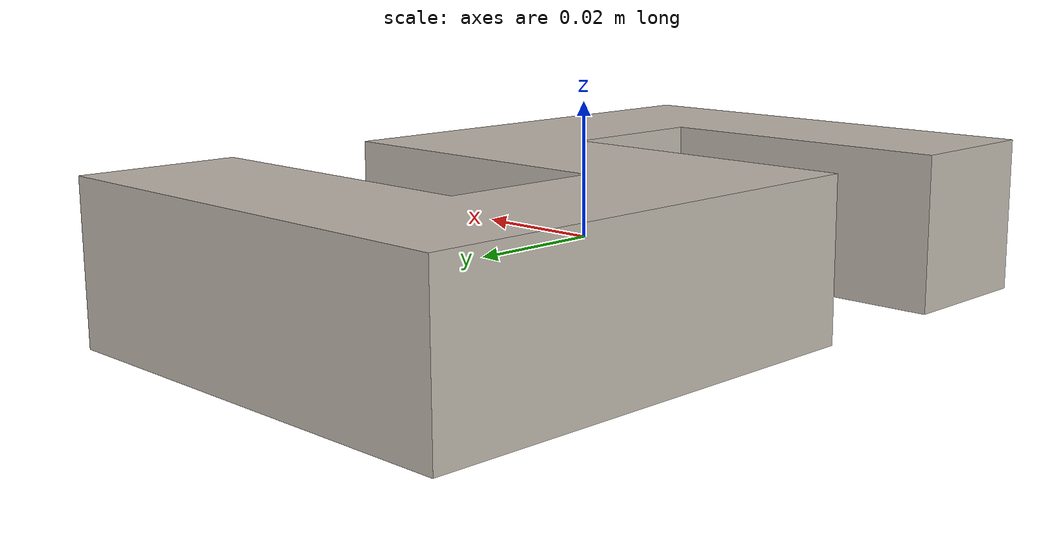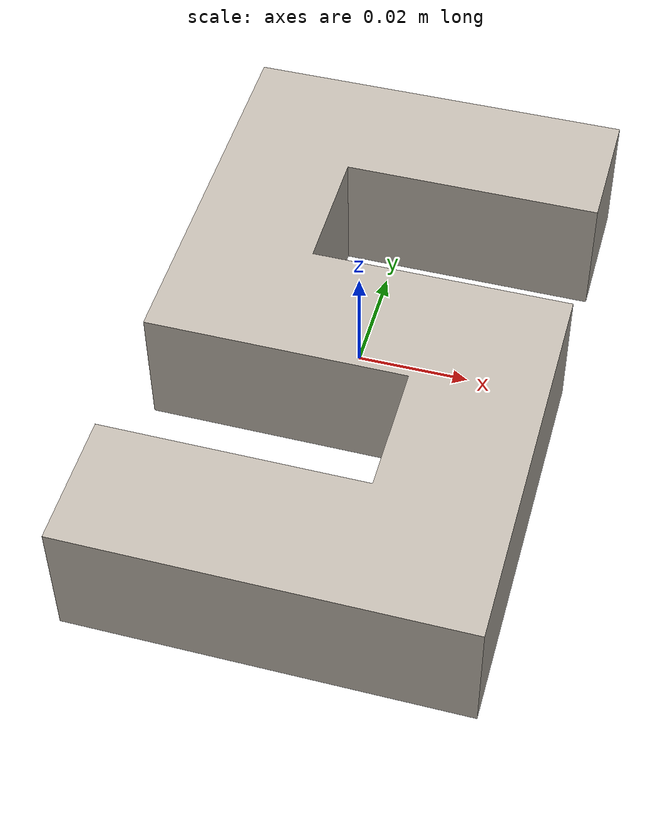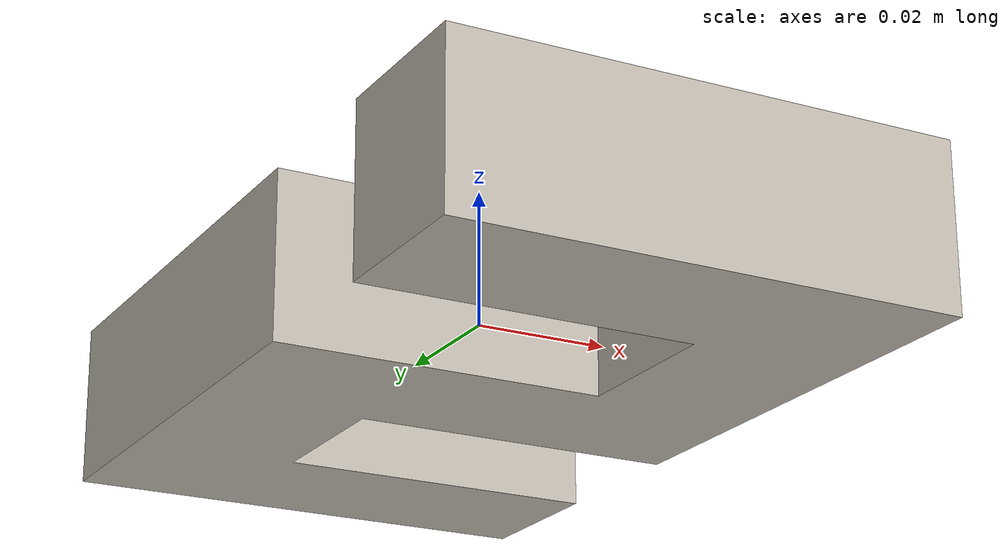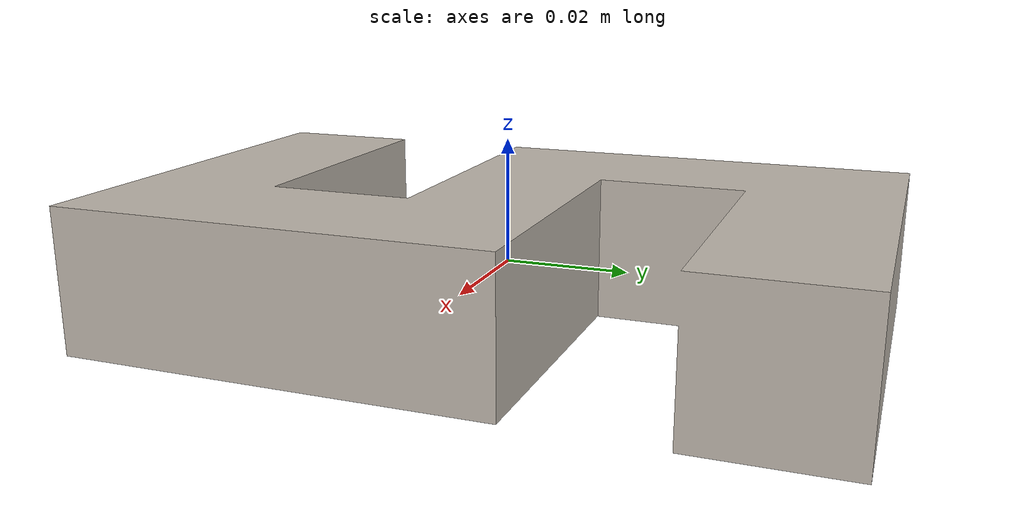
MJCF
<?xml version="1.0" encoding="UTF-8"?>
<mujoco model="aprilcube_voxel_target">
  <!-- Bounding box: 72 x 120 x 24 mm -->
  <!-- Origin at target center, units in meters -->

  <compiler angle="radian" meshdir="."/>

  <asset>
    <texture name="cube_tex" type="2d" file="cube_atlas.png"/>
    <material name="cube_mat" texture="cube_tex" specular="0.1" shininess="0.1"/>
    <mesh name="cube_mesh" file="cube.obj"/>
  </asset>

  <worldbody>
    <body name="cube" pos="0 0 0">
      <freejoint name="cube_joint"/>
      <geom name="cube_visual" type="mesh" mesh="cube_mesh" material="cube_mat" contype="0" conaffinity="0" group="1" density="0"/>
      <geom name="front_run_collision" type="box" pos="0.000000 -0.048000 0.000000" size="0.036000 0.012000 0.012000" density="1250" rgba="0.5 0.5 0.5 0" contype="1" conaffinity="1" group="2"/>
      <geom name="right_turn_collision" type="box" pos="0.024000 -0.024000 0.000000" size="0.012000 0.012000 0.012000" density="1250" rgba="0.5 0.5 0.5 0" contype="1" conaffinity="1" group="2"/>
      <geom name="middle_run_collision" type="box" pos="0.000000 0.000000 0.000000" size="0.036000 0.012000 0.012000" density="1250" rgba="0.5 0.5 0.5 0" contype="1" conaffinity="1" group="2"/>
      <geom name="left_turn_collision" type="box" pos="-0.024000 0.024000 0.000000" size="0.012000 0.012000 0.012000" density="1250" rgba="0.5 0.5 0.5 0" contype="1" conaffinity="1" group="2"/>
      <geom name="back_run_collision" type="box" pos="0.000000 0.048000 0.000000" size="0.036000 0.012000 0.012000" density="1250" rgba="0.5 0.5 0.5 0" contype="1" conaffinity="1" group="2"/>
      <site name="cube_center" pos="0 0 0" size="0.001"/>
    </body>
  </worldbody>
</mujoco>
